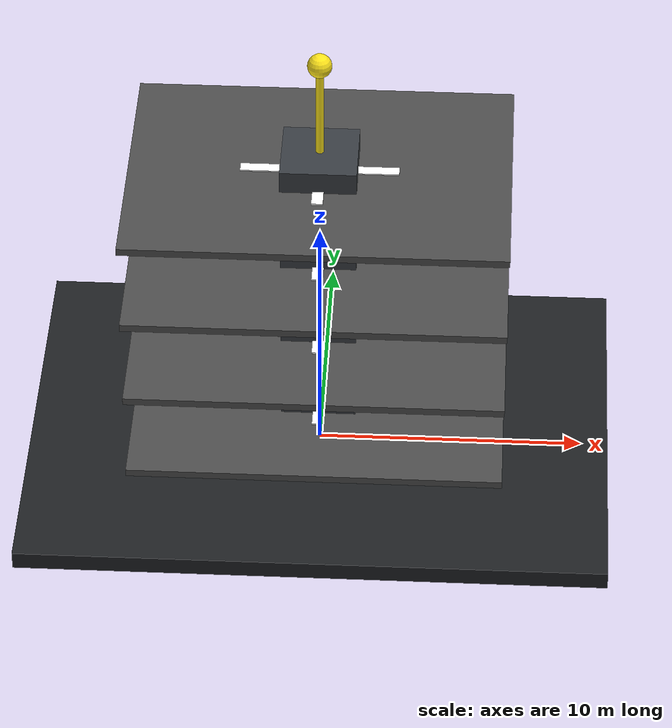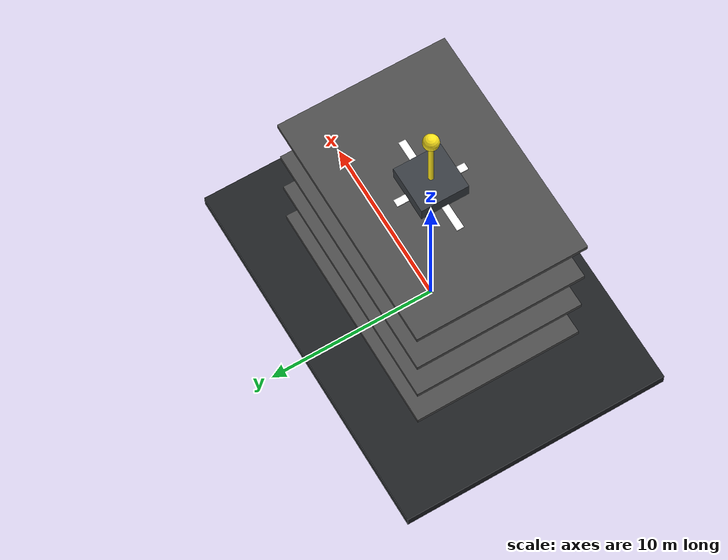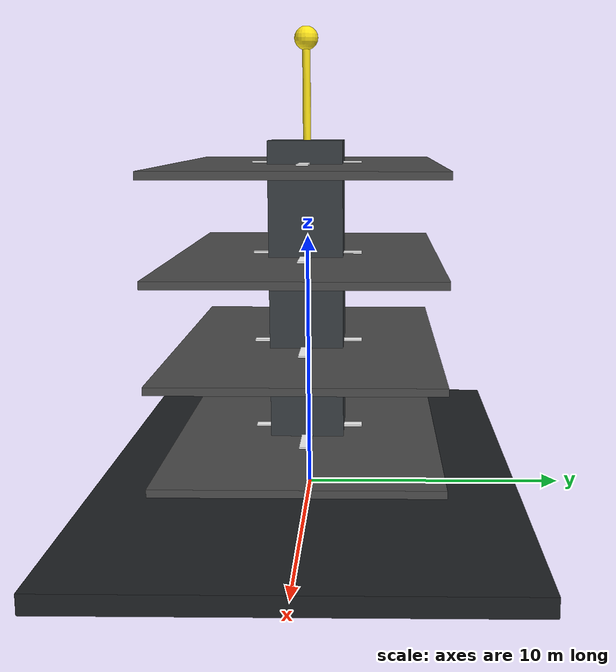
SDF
<?xml version="1.0"?>
<sdf version="1.10">
  <model name="four_level_uav_platform">
    <static>true</static>
    <link name="structure">
      <collision name="base_collision">
        <pose>0 0 0.35 0 0 0</pose>
        <geometry>
          <box>
            <size>22 16 0.7</size>
          </box>
        </geometry>
      </collision>
      <visual name="base_float">
        <pose>0 0 0.35 0 0 0</pose>
        <geometry>
          <box>
            <size>22 16 0.7</size>
          </box>
        </geometry>
        <material>
          <ambient>0.05 0.055 0.06 1</ambient>
          <diffuse>0.12 0.13 0.14 1</diffuse>
          <specular>0.18 0.18 0.18 1</specular>
        </material>
      </visual>
      <visual name="green_base_marker">
        <pose>0 0 0.74 0 0 0</pose>
        <geometry>
          <cylinder>
            <radius>3.4</radius>
            <length>0.05</length>
          </cylinder>
        </geometry>
        <material>
          <ambient>0.0 0.55 0.18 1</ambient>
          <diffuse>0.0 0.85 0.30 1</diffuse>
        </material>
      </visual>
      <visual name="tower_core">
        <pose>0 0 7.2 0 0 0</pose>
        <geometry>
          <box>
            <size>2.8 2.8 13.0</size>
          </box>
        </geometry>
        <material>
          <ambient>0.10 0.11 0.12 1</ambient>
          <diffuse>0.22 0.24 0.26 1</diffuse>
        </material>
      </visual>
      <visual name="mast">
        <pose>0 0 15.2 0 0 0</pose>
        <geometry>
          <cylinder>
            <radius>0.15</radius>
            <length>4.2</length>
          </cylinder>
        </geometry>
        <material>
          <ambient>0.8 0.72 0.08 1</ambient>
          <diffuse>1 0.90 0.10 1</diffuse>
        </material>
      </visual>
      <visual name="top_light">
        <pose>0 0 17.5 0 0 0</pose>
        <geometry>
          <sphere>
            <radius>0.45</radius>
          </sphere>
        </geometry>
        <material>
          <ambient>1 0.9 0.1 1</ambient>
          <diffuse>1 0.9 0.1 1</diffuse>
          <emissive>1 0.75 0.05 1</emissive>
        </material>
      </visual>
      <light name="platform_light" type="point">
        <pose>0 0 17.5 0 0 0</pose>
        <cast_shadows>false</cast_shadows>
        <intensity>1.2</intensity>
        <diffuse>1 0.85 0.35 1</diffuse>
        <attenuation>
          <range>80</range>
          <constant>0.6</constant>
          <linear>0.03</linear>
          <quadratic>0.001</quadratic>
        </attenuation>
      </light>
      <visual name="level_1_deck">
        <pose>0 0 2.2 0 0 0</pose>
        <geometry><box><size>14 10 0.28</size></box></geometry>
        <material><ambient>0.16 0.16 0.16 1</ambient><diffuse>0.30 0.30 0.30 1</diffuse></material>
      </visual>
      <visual name="level_2_deck">
        <pose>0 0 5.7 0 0 0</pose>
        <geometry><box><size>14 10 0.28</size></box></geometry>
        <material><ambient>0.16 0.16 0.16 1</ambient><diffuse>0.30 0.30 0.30 1</diffuse></material>
      </visual>
      <visual name="level_3_deck">
        <pose>0 0 9.2 0 0 0</pose>
        <geometry><box><size>14 10 0.28</size></box></geometry>
        <material><ambient>0.16 0.16 0.16 1</ambient><diffuse>0.30 0.30 0.30 1</diffuse></material>
      </visual>
      <visual name="level_4_deck">
        <pose>0 0 12.7 0 0 0</pose>
        <geometry><box><size>14 10 0.28</size></box></geometry>
        <material><ambient>0.16 0.16 0.16 1</ambient><diffuse>0.30 0.30 0.30 1</diffuse></material>
      </visual>
      <visual name="h_1_a"><pose>0 0 2.36 0 0 0</pose><geometry><box><size>5.8 0.42 0.06</size></box></geometry><material><ambient>1 1 1 1</ambient><diffuse>1 1 1 1</diffuse></material></visual>
      <visual name="h_1_b"><pose>0 0 2.37 0 0 1.5708</pose><geometry><box><size>4.2 0.42 0.06</size></box></geometry><material><ambient>1 1 1 1</ambient><diffuse>1 1 1 1</diffuse></material></visual>
      <visual name="h_2_a"><pose>0 0 5.86 0 0 0</pose><geometry><box><size>5.8 0.42 0.06</size></box></geometry><material><ambient>1 1 1 1</ambient><diffuse>1 1 1 1</diffuse></material></visual>
      <visual name="h_2_b"><pose>0 0 5.87 0 0 1.5708</pose><geometry><box><size>4.2 0.42 0.06</size></box></geometry><material><ambient>1 1 1 1</ambient><diffuse>1 1 1 1</diffuse></material></visual>
      <visual name="h_3_a"><pose>0 0 9.36 0 0 0</pose><geometry><box><size>5.8 0.42 0.06</size></box></geometry><material><ambient>1 1 1 1</ambient><diffuse>1 1 1 1</diffuse></material></visual>
      <visual name="h_3_b"><pose>0 0 9.37 0 0 1.5708</pose><geometry><box><size>4.2 0.42 0.06</size></box></geometry><material><ambient>1 1 1 1</ambient><diffuse>1 1 1 1</diffuse></material></visual>
      <visual name="h_4_a"><pose>0 0 12.86 0 0 0</pose><geometry><box><size>5.8 0.42 0.06</size></box></geometry><material><ambient>1 1 1 1</ambient><diffuse>1 1 1 1</diffuse></material></visual>
      <visual name="h_4_b"><pose>0 0 12.87 0 0 1.5708</pose><geometry><box><size>4.2 0.42 0.06</size></box></geometry><material><ambient>1 1 1 1</ambient><diffuse>1 1 1 1</diffuse></material></visual>
    </link>
  </model>
</sdf>
